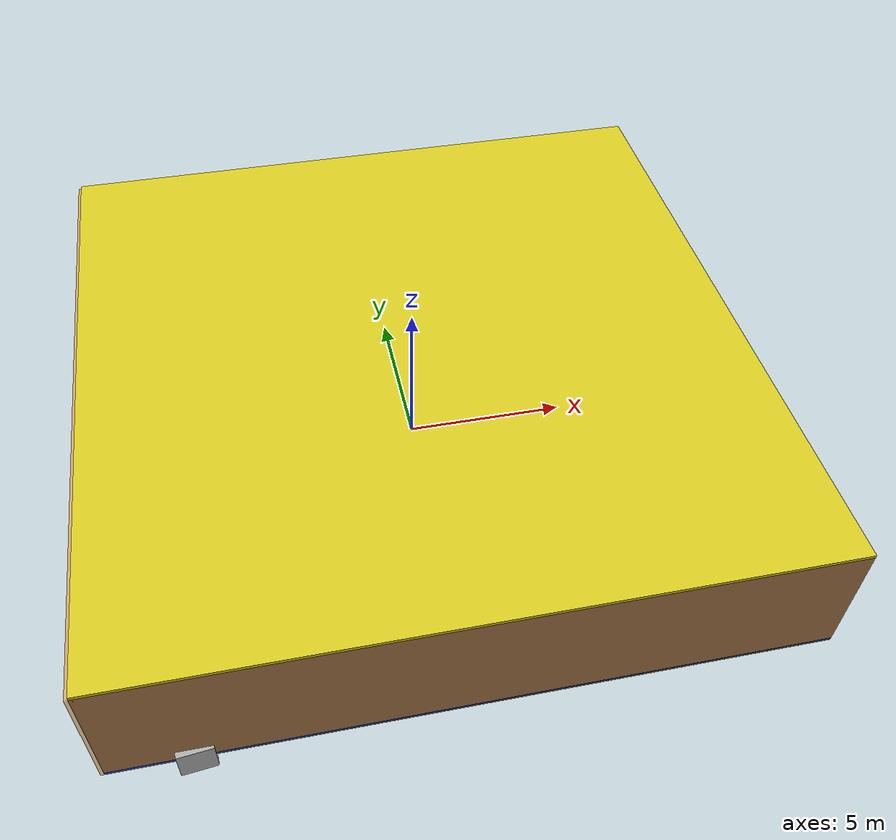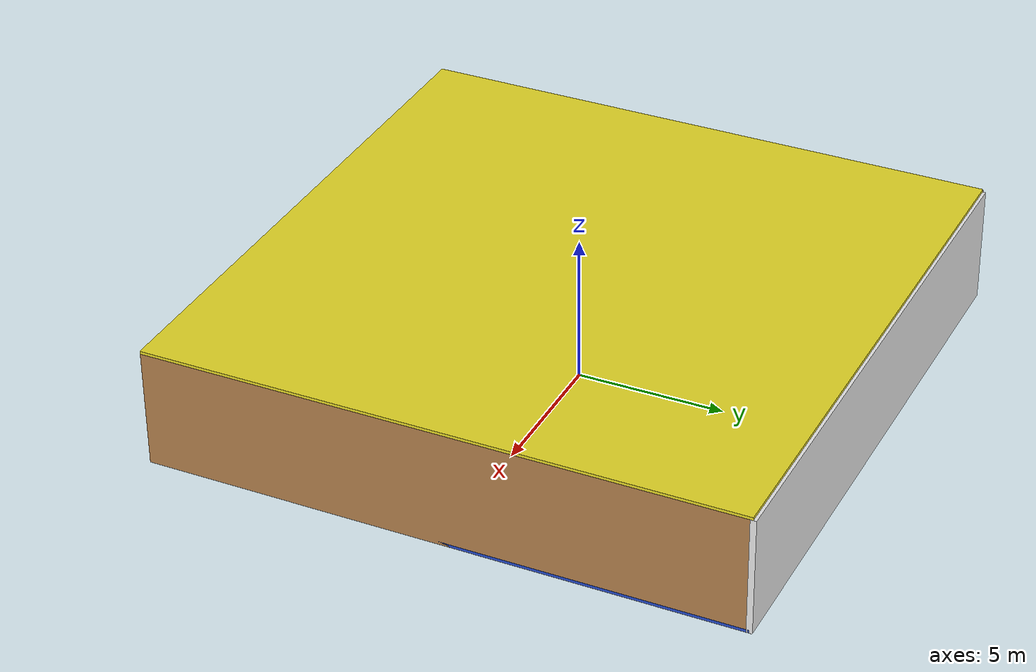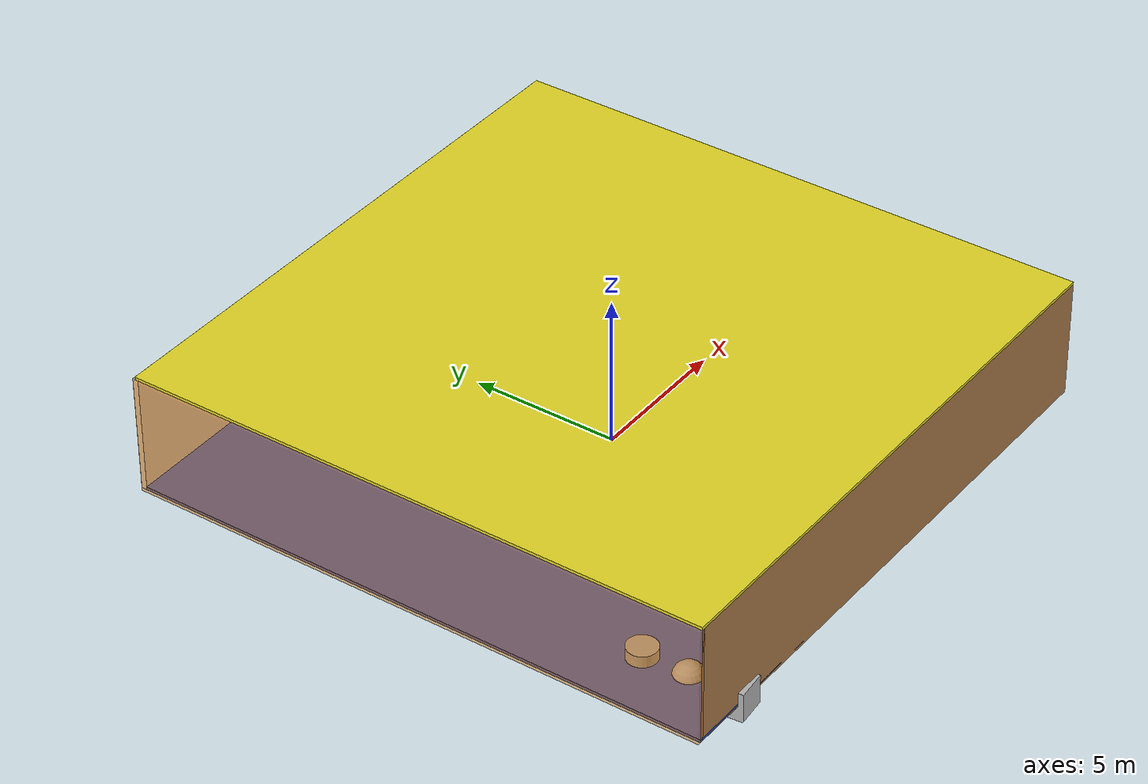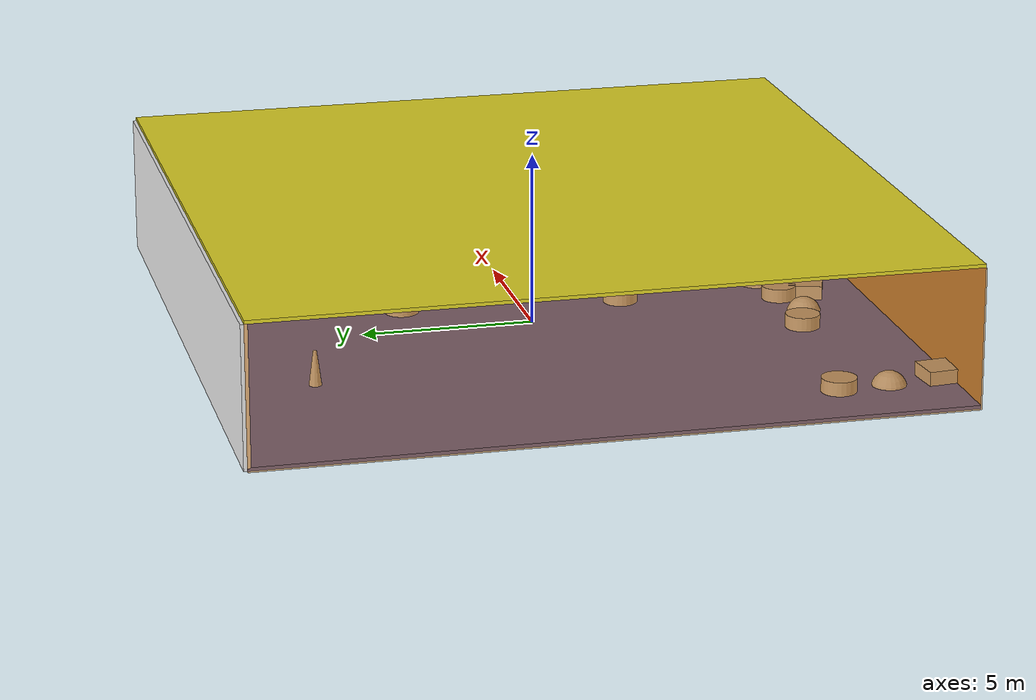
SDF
<sdf version="1.4">
 <world name="default">
  <physics type="ode">
   <max_step_size>0.001</max_step_size>
   <real_time_factor>1</real_time_factor>
   <real_time_update_rate>1000</real_time_update_rate>
   <gravity>0 0 -9.8</gravity>
  </physics>
  <scene><ambient>0.4 0.4 0.4 1</ambient><background>0.7 0.7 0.7 1</background><shadows>1</shadows></scene>
  <model name="Surrounding">
   <static>1</static>
   <link name="Ceiling">
    <collision name="Ceiling_Collision"><geometry><box><size>20 20 0.1</size></box></geometry></collision>
    <visual name="Ceiling_Visual">
     <geometry><box><size>20 20 0.1</size></box></geometry>
     <material>
      <script><uri>file://media/materials/scripts/gazebo.material</uri><name>Gazebo/Yellow</name></script>
     </material>
    </visual>
    <pose>0 0 4.05 0 0 0</pose>
   </link>
   <link name="Wall_South">
    <collision name="Wall_South_Collision">
     <geometry><box><size>20 0 4</size></box></geometry>
     <pose>0 0 2 0 -0 0</pose>
    </collision>
    <visual name="Wall_South_Visual">
     <pose>0 0 2 0 -0 0</pose>
     <geometry><box><size>20 0 4</size></box></geometry>
     <material>
      <script><uri>file://media/materials/scripts/gazebo.material</uri><name>Gazebo/WoodFloor</name></script>
     </material>
    </visual>
    <velocity_decay><linear>0</linear><angular>0</angular></velocity_decay>
    <pose>0 -10 0 0 -0 0</pose>
   </link>
   <link name="Wall_East">
    <collision name="Wall_21_Collision">
     <geometry><box><size>20 0 4</size></box></geometry>
     <pose>0 0 2 0 -0 0</pose>
    </collision>
    <visual name="Wall_21_Visual">
     <pose>0 0 2 0 -0 0</pose>
     <geometry><box><size>20 0 4</size></box></geometry>
     <material>
      <script><uri>file://media/materials/scripts/gazebo.material</uri><name>Gazebo/WoodFloor</name></script>
     </material>
    </visual>
    <velocity_decay><linear>0</linear><angular>0</angular></velocity_decay>
    <pose>10 0 0 0 -0 1.5708</pose>
   </link>
   <link name="Wall_North">
    <collision name="Wall_22_Collision">
     <geometry><box><size>20 0.2 4</size></box></geometry>
     <pose>0 0 2 0 -0 0</pose>
    </collision>
    <visual name="Wall_22_Visual">
     <pose>0 0 2 0 -0 0</pose>
     <geometry><box><size>20 0.2 4</size></box></geometry>
     <material>
      <script><uri>file://media/materials/scripts/gazebo.material</uri><name>Gazebo/White</name></script>
     </material>
    </visual>
    <velocity_decay><linear>0</linear><angular>0</angular></velocity_decay>
    <pose>0 10 0 0 -0 0</pose>
   </link>
   <link name="Wall_West">
    <collision name="Wall_23_Collision">
     <geometry><box><size>20 0.2 4</size></box></geometry>
     <pose>0 0 2 0 -0 0</pose>
    </collision>
    <visual name="Wall_23_Visual">
     <pose>0 0 2 0 -0 0</pose>
     <geometry><box><size>20 0.2 4</size></box></geometry>
     <material>
      <script>
       <uri>file://media/materials/scripts/gazebo.material</uri>
       <name>Gazebo/OrangeTransparent</name>
      </script>
     </material>
    </visual>
    <velocity_decay><linear>0</linear><angular>0</angular></velocity_decay>
    <pose>-10 0 0 0 0 -1.5708</pose>
   </link>
   <link name="Ground_link">
    <collision name="collision">
     <pose>0 0 .05 0 -0 0</pose>
     <geometry><box><size>20 20 0.1</size></box></geometry>
    </collision>
    <visual name="visual">
     <pose>0 0 .05 0 -0 0</pose>
     <geometry><box><size>20 20 0.1</size></box></geometry>
     <material>
      <script><uri>file://media/materials/scripts/gazebo.material</uri><name>Gazebo/BlueGlow</name></script>
     </material>
    </visual>
   </link>
   <static>1</static>
  </model>
  <spherical_coordinates>
   <surface_model>EARTH_WGS84</surface_model>
   <latitude_deg>0</latitude_deg>
   <longitude_deg>0</longitude_deg>
   <elevation>0</elevation>
   <heading_deg>0</heading_deg>
  </spherical_coordinates>
  <light name="lightball_0" type="diffuse">
   <diffuse>0.8 0.8 0.8 1</diffuse>
   <specular>0.2 0.2 0.2 1</specular>
   <attenuation>
    <range>100</range>
    <constant>0.7</constant>
    <linear>0.01</linear>
    <quadratic>0.001</quadratic>
   </attenuation>
   <direction>-0.5 0.1 -0.9</direction>
   <pose>-1.48727374514 6.08378175603 0.830224569754 0 0 0</pose>
  </light>
  <light name="lightball_1" type="diffuse">
   <diffuse>0.8 0.8 0.8 1</diffuse>
   <specular>0.2 0.2 0.2 1</specular>
   <attenuation>
    <range>100</range>
    <constant>0.7</constant>
    <linear>0.01</linear>
    <quadratic>0.001</quadratic>
   </attenuation>
   <direction>-0.5 0.1 -0.9</direction>
   <pose>-0.936530104484 -0.684908817996 1.95909403224 0 0 0</pose>
  </light>
  <light name="lightball_2" type="diffuse">
   <diffuse>0.8 0.8 0.8 1</diffuse>
   <specular>0.2 0.2 0.2 1</specular>
   <attenuation>
    <range>100</range>
    <constant>0.7</constant>
    <linear>0.01</linear>
    <quadratic>0.001</quadratic>
   </attenuation>
   <direction>-0.5 0.1 -0.9</direction>
   <pose>8.74628880516 -6.37542350408 1.83501970049 0 0 0</pose>
  </light>
  <light name="lightball_3" type="diffuse">
   <diffuse>0.8 0.8 0.8 1</diffuse>
   <specular>0.2 0.2 0.2 1</specular>
   <attenuation>
    <range>100</range>
    <constant>0.7</constant>
    <linear>0.01</linear>
    <quadratic>0.001</quadratic>
   </attenuation>
   <direction>-0.5 0.1 -0.9</direction>
   <pose>-0.988690516133 -6.94485908745 2.417535542 0 0 0</pose>
  </light>
  <light name="lightball_4" type="diffuse">
   <diffuse>0.8 0.8 0.8 1</diffuse>
   <specular>0.2 0.2 0.2 1</specular>
   <attenuation>
    <range>100</range>
    <constant>0.7</constant>
    <linear>0.01</linear>
    <quadratic>0.001</quadratic>
   </attenuation>
   <direction>-0.5 0.1 -0.9</direction>
   <pose>4.87988337685 1.09225422172 1.00583861166 0 0 0</pose>
  </light>
  <light name="lightball_5" type="diffuse">
   <diffuse>0.8 0.8 0.8 1</diffuse>
   <specular>0.2 0.2 0.2 1</specular>
   <attenuation>
    <range>100</range>
    <constant>0.7</constant>
    <linear>0.01</linear>
    <quadratic>0.001</quadratic>
   </attenuation>
   <direction>-0.5 0.1 -0.9</direction>
   <pose>6.25247456443 -5.06129870539 2.49535732202 0 0 0</pose>
  </light>
  <light name="lightball_6" type="diffuse">
   <diffuse>0.8 0.8 0.8 1</diffuse>
   <specular>0.2 0.2 0.2 1</specular>
   <attenuation>
    <range>100</range>
    <constant>0.7</constant>
    <linear>0.01</linear>
    <quadratic>0.001</quadratic>
   </attenuation>
   <direction>-0.5 0.1 -0.9</direction>
   <pose>-3.49668202195 -0.280255595431 2.55138779567 0 0 0</pose>
  </light>
  <light name="lightball_7" type="diffuse">
   <diffuse>0.8 0.8 0.8 1</diffuse>
   <specular>0.2 0.2 0.2 1</specular>
   <attenuation>
    <range>100</range>
    <constant>0.7</constant>
    <linear>0.01</linear>
    <quadratic>0.001</quadratic>
   </attenuation>
   <direction>-0.5 0.1 -0.9</direction>
   <pose>-9.61544839525 -0.829329541715 3.25814400518 0 0 0</pose>
  </light>
  <include>
   <uri>model://textured_shapes</uri>
   <pose>-7.83699483288 -8.13898315869 0 0 0 0.0978136220296</pose>
  </include>
  <include>
   <uri>model://construction_cone</uri>
   <pose>-4.14261017547 7.13677197994 0 0 0 0.263838553382</pose>
  </include>
  <include>
   <uri>model://textured_shapes</uri>
   <pose>-1.09320066503 -7.84283348927 0 0 0 1.23695152686</pose>
  </include>
  <include>
   <uri>model://textured_shapes</uri>
   <pose>1.63678911029 -7.21721926206 0 0 0 1.73900615669</pose>
  </include>
  <include>
   <uri>model://textured_shapes</uri>
   <pose>2.17222632232 -1.96323241477 0 0 0 2.21833569818</pose>
  </include>
  <include>
   <uri>model://textured_shapes</uri>
   <pose>2.05705968946 4.94671973978 0 0 0 2.75952702859</pose>
  </include>
  <include><uri>model://cabinet</uri><pose>4.60838829281 -7.27832164123 0 0 0 2.35676196556</pose></include>
  <include><uri>model://table</uri><pose>3.98582566832 3.97661303755 0 0 0 0.501887596242</pose></include>
  <include><uri>model://cabinet</uri><pose>4.98424486657 6.84429859774 0 0 0 2.30129296324</pose></include>
 </world>
</sdf>

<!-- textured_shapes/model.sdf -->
<sdf version="1.6">
  <model name="textured_shapes">
    <pose>0 0 0.5 0 0 0</pose>
    <link name="box">
      <pose>0 -1.5 0 0 0 0</pose>
      <collision name="collision">
        <geometry>
          <box>
            <size>1 1 1</size>
          </box>
        </geometry>
      </collision>
      <visual name="visual">
        <geometry>
          <box>
            <size>1 1 1</size>
          </box>
        </geometry>
        <material>
          <script>
            <uri>model://../model_source/models/textured_shapes/materials/scripts</uri>
            <uri>model://../model_source/models/textured_shapes/materials/textures</uri>
            <name>TexturedShape/Squares</name>
          </script>
        </material>
      </visual>
    </link>
    <link name="sphere">
      <collision name="collision">
        <geometry>
          <sphere>
            <radius>0.5</radius>
          </sphere>
        </geometry>
      </collision>
      <visual name="visual">
        <geometry>
          <sphere>
            <radius>0.5</radius>
          </sphere>
        </geometry>
        <material>
          <script>
            <uri>model://../model_source/models/textured_shapes/materials/scripts</uri>
            <uri>model://../model_source/models/textured_shapes/materials/textures</uri>
            <name>TexturedShape/Squares</name>
          </script>
        </material>
      </visual>
    </link>
    <link name="cylinder">
      <pose>0 1.5 0 0 0 0</pose>
      <collision name="collision">
        <geometry>
          <cylinder>
            <radius>0.5</radius>
            <length>1</length>
          </cylinder>
        </geometry>
      </collision>
      <visual name="visual">
        <geometry>
          <cylinder>
            <radius>0.5</radius>
            <length>1</length>
          </cylinder>
        </geometry>
        <material>
          <script>
            <uri>model://../model_source/models/textured_shapes/materials/scripts</uri>
            <uri>model://../model_source/models/textured_shapes/materials/textures</uri>
            <name>TexturedShape/Squares</name>
          </script>
        </material>
      </visual>
    </link>
  </model>
</sdf>

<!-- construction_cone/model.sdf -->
<sdf version="1.5">
  <model name="Construction Cone">
    <link name="link">
      <collision name="collision">
        <geometry>
          <mesh>
            <scale>10 10 10</scale>
            <uri>file://isr-testbed/construction_cone/meshes/construction_cone.dae</uri>
          </mesh>
        </geometry>
      </collision>
      <visual name="visual">
        <geometry>
          <mesh>
            <scale>10 10 10</scale>
            <uri>file://isr-testbed/construction_cone/meshes/construction_cone.dae</uri>
          </mesh>
        </geometry>
      </visual>
    </link>
  </model>
</sdf>

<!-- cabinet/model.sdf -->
<sdf version="1.5">
  <model name="cabinet">
    <static>true</static>
    <link name="cabinet_bottom_plate">
      <inertial>
        <pose>0 0 -1 0 0 0</pose>
        <inertia>
          <ixx>2.050000</ixx>
          <ixy>0</ixy>
          <ixz>0</ixz>
          <iyy>2.050000</iyy>
          <iyz>0</iyz>
          <izz>2.050000</izz>
        </inertia>
        <mass>25.000000</mass>
      </inertial>
      <collision name="cabinet_bottom_plate_geom">
        <pose>0 0 0.010000 0 0 0</pose>
        <geometry>
          <box>
            <size>0.450000 0.450000 0.020000</size>
          </box>
        </geometry>
      </collision>
      <visual name="cabinet_bottom_plate_geom_visual">
        <pose>0 0 0.010000 0 0 0</pose>
        <geometry>
          <box>
            <size>0.450000 0.450000 0.020000</size>
          </box>
        </geometry>
        <material>
          <script>
            <uri>model://media/materials/scripts/gazebo.material</uri>
            <name>Gazebo/Wood</name>
          </script>
        </material>
      </visual>
      <collision name="cabinet_bottom_plate_geom_cabinet_back_plate">
        <pose>0.235000 0 0.510000 0 0 0</pose>
        <geometry>
          <box>
            <size>0.020000 0.450000 1.020000</size>
          </box>
        </geometry>
      </collision>
      <visual name="cabinet_bottom_plate_geom_cabinet_back_plate_visual">
        <pose>0.235000 0 0.510000 0 0 0</pose>
        <geometry>
          <box>
            <size>0.020000 0.450000 1.020000</size>
          </box>
        </geometry>
        <material>
          <script>
            <uri>model://media/materials/scripts/gazebo.material</uri>
            <name>Gazebo/Wood</name>
          </script>
        </material>
      </visual>
      <collision name="cabinet_bottom_plate_geom_cabinet_left_plate">
        <pose>0 0.235000 0.510000 0 0 0</pose>
        <geometry>
          <box>
            <size>0.450000 0.020000 1.020000</size>
          </box>
        </geometry>
      </collision>
      <visual name="cabinet_bottom_plate_geom_cabinet_left_plate_visual">
        <pose>0 0.235000 0.510000 0 0 0</pose>
        <geometry>
          <box>
            <size>0.450000 0.020000 1.020000</size>
          </box>
        </geometry>
        <material>
          <script>
            <uri>model://media/materials/scripts/gazebo.material</uri>
            <name>Gazebo/Wood</name>
          </script>
        </material>
      </visual>
      <collision name="cabinet_bottom_plate_geom_cabinet_middle_plate">
        <pose>0 0 0.510000 0 0 0</pose>
        <geometry>
          <box>
            <size>0.450000 0.450000 0.020000</size>
          </box>
        </geometry>
      </collision>
      <visual name="cabinet_bottom_plate_geom_cabinet_middle_plate_visual">
        <pose>0 0 0.510000 0 0 0</pose>
        <geometry>
          <box>
            <size>0.450000 0.450000 0.020000</size>
          </box>
        </geometry>
        <material>
          <script>
            <uri>model://media/materials/scripts/gazebo.material</uri>
            <name>Gazebo/Wood</name>
          </script>
        </material>
      </visual>
      <collision name="cabinet_bottom_plate_geom_cabinet_right_plate">
        <pose>0 -0.235000 0.510000 0 0 0</pose>
        <geometry>
          <box>
            <size>0.450000 0.020000 1.020000</size>
          </box>
        </geometry>
      </collision>
      <visual name="cabinet_bottom_plate_geom_cabinet_right_plate_visual">
        <pose>0 -0.235000 0.510000 0 0 0</pose>
        <geometry>
          <box>
            <size>0.450000 0.020000 1.020000</size>
          </box>
        </geometry>
        <material>
          <script>
            <uri>model://media/materials/scripts/gazebo.material</uri>
            <name>Gazebo/Wood</name>
          </script>
        </material>
      </visual>
      <collision name="cabinet_bottom_plate_geom_cabinet_top_plate">
        <pose>0 0 1.010000 0 0 0</pose>
        <geometry>
          <box>
            <size>0.450000 0.450000 0.020000</size>
          </box>
        </geometry>
      </collision>
      <visual name="cabinet_bottom_plate_geom_cabinet_top_plate_visual">
        <pose>0 0 1.010000 0 0 0</pose>
        <geometry>
          <box>
            <size>0.450000 0.450000 0.020000</size>
          </box>
        </geometry>
        <material>
          <script>
            <uri>model://media/materials/scripts/gazebo.material</uri>
            <name>Gazebo/Wood</name>
          </script>
        </material>
      </visual>
    </link>
  </model>
</sdf>

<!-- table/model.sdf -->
<sdf version="1.5">
  <model name="table">
    <static>true</static>
    <link name="link">
      <collision name="surface">
        <pose>0 0 1.0 0 0 0</pose>
        <geometry>
          <box>
            <size>1.5 0.8 0.03</size>
          </box>
        </geometry>
        <surface>
          <friction>
            <ode>
              <mu>0.6</mu>
              <mu2>0.6</mu2>
            </ode>
          </friction>
        </surface>
      </collision>
      <visual name="visual1">
        <pose>0 0 1.0 0 0 0</pose>
        <geometry>
          <box>
            <size>1.5 0.8 0.03</size>
          </box>
        </geometry>
        <material>
          <script>
            <uri>model://media/materials/scripts/gazebo.material</uri>
            <name>Gazebo/Wood</name>
          </script>
        </material>
      </visual>
      <collision name="front_left_leg">
        <pose>0.68 0.38 0.5 0 0 0</pose>
        <geometry>
          <cylinder>
            <radius>0.02</radius>
            <length>1.0</length>
          </cylinder>
        </geometry>
      </collision>
      <visual name="front_left_leg">
        <pose>0.68 0.38 0.5 0 0 0</pose>
        <geometry>
          <cylinder>
            <radius>0.02</radius>
            <length>1.0</length>
          </cylinder>
        </geometry>
        <material>
          <script>
            <uri>model://media/materials/scripts/gazebo.material</uri>
            <name>Gazebo/Grey</name>
          </script>
        </material>
      </visual>
      <collision name="front_right_leg">
        <pose>0.68 -0.38 0.5 0 0 0</pose>
        <geometry>
          <cylinder>
            <radius>0.02</radius>
            <length>1.0</length>
          </cylinder>
        </geometry>
      </collision>
      <visual name="front_right_leg">
        <pose>0.68 -0.38 0.5 0 0 0</pose>
        <geometry>
          <cylinder>
            <radius>0.02</radius>
            <length>1.0</length>
          </cylinder>
        </geometry>
        <material>
          <script>
            <uri>model://media/materials/scripts/gazebo.material</uri>
            <name>Gazebo/Grey</name>
          </script>
        </material>
      </visual>
      <collision name="back_right_leg">
        <pose>-0.68 -0.38 0.5 0 0 0</pose>
        <geometry>
          <cylinder>
            <radius>0.02</radius>
            <length>1.0</length>
          </cylinder>
        </geometry>
      </collision>
      <visual name="back_right_leg">
        <pose>-0.68 -0.38 0.5 0 0 0</pose>
        <geometry>
          <cylinder>
            <radius>0.02</radius>
            <length>1.0</length>
          </cylinder>
        </geometry>
        <material>
          <script>
            <uri>model://media/materials/scripts/gazebo.material</uri>
            <name>Gazebo/Grey</name>
          </script>
        </material>
      </visual>
      <collision name="back_left_leg">
        <pose>-0.68 0.38 0.5 0 0 0</pose>
        <geometry>
          <cylinder>
            <radius>0.02</radius>
            <length>1.0</length>
          </cylinder>
        </geometry>
      </collision>
      <visual name="back_left_leg">
        <pose>-0.68 0.38 0.5 0 0 0</pose>
        <geometry>
          <cylinder>
            <radius>0.02</radius>
            <length>1.0</length>
          </cylinder>
        </geometry>
        <material>
          <script>
            <uri>model://media/materials/scripts/gazebo.material</uri>
            <name>Gazebo/Grey</name>
          </script>
        </material>
      </visual>
    </link>
  </model>
</sdf>
